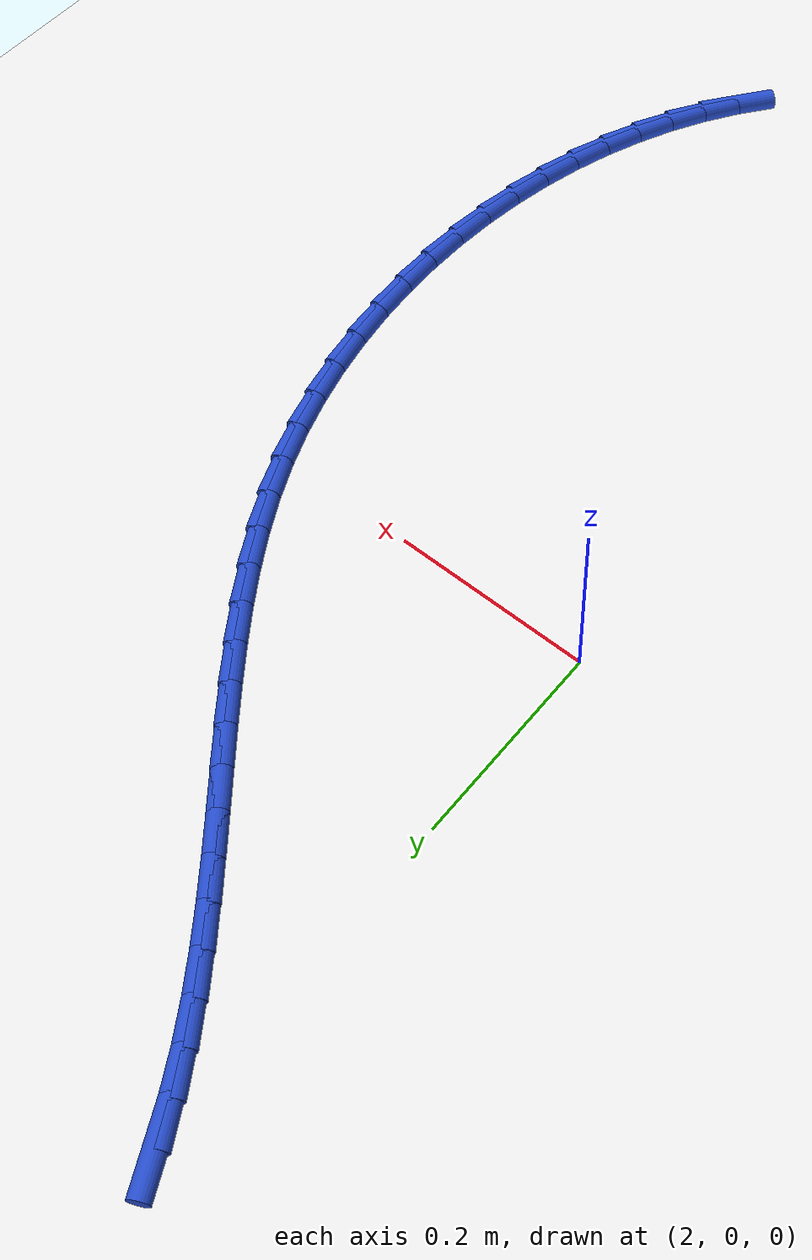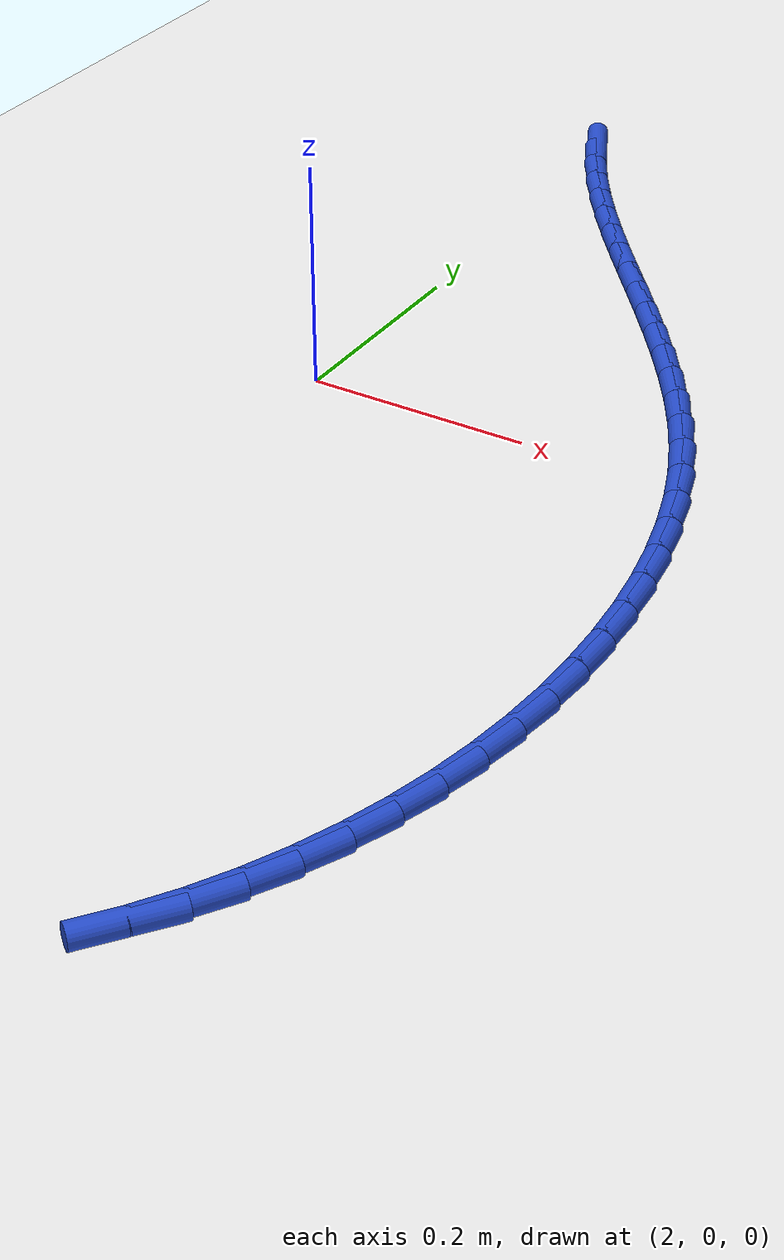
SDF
<sdf version="1.6">
 <world name="default">
  <model name="ground_plane">
   <static>1</static>
   <link name="link">
    <collision name="collision">
     <geometry><plane><normal>0 0 1</normal><size>100 100</size></plane></geometry>
     <surface><friction><ode><mu>100</mu><mu2>50</mu2></ode></friction></surface>
    </collision>
    <visual name="visual">
     <cast_shadows>0</cast_shadows>
     <geometry><plane><normal>0 0 1</normal><size>100 100</size></plane></geometry>
     <material>
      <script><uri>file://media/materials/scripts/gazebo.material</uri><name>Gazebo/WhiteGlow</name></script>
     </material>
    </visual>
   </link>
  </model>
  <model name="line">
   <link name="link_82">
    <pose>1.9943358474853345 0.5230932176683418 0.01 0 1.57 -1.1051795002723537</pose>
    <collision name="collision">
     <geometry><cylinder><radius>0.01</radius><length>0.08</length></cylinder></geometry>
    </collision>
    <visual name="visual">
     <material>
      <script><name>Gazebo/Blue</name><uri>file://media/materials/scripts/gazebo.material</uri></script>
     </material>
     <geometry><cylinder><radius>0.01</radius><length>0.08</length></cylinder></geometry>
    </visual>
   </link>
   <link name="link_83">
    <pose>2.011148510317701 0.48963278176033315 0.01 0 1.57 -1.0487421136812345</pose>
    <collision name="collision">
     <geometry><cylinder><radius>0.01</radius><length>0.08</length></cylinder></geometry>
    </collision>
    <visual name="visual">
     <material>
      <script><name>Gazebo/Blue</name><uri>file://media/materials/scripts/gazebo.material</uri></script>
     </material>
     <geometry><cylinder><radius>0.01</radius><length>0.08</length></cylinder></geometry>
    </visual>
   </link>
   <link name="link_84">
    <pose>2.0299163910560027 0.4570095949847887 0.01 0 1.57 -1.0013109159219804</pose>
    <collision name="collision">
     <geometry><cylinder><radius>0.01</radius><length>0.08</length></cylinder></geometry>
    </collision>
    <visual name="visual">
     <material>
      <script><name>Gazebo/Blue</name><uri>file://media/materials/scripts/gazebo.material</uri></script>
     </material>
     <geometry><cylinder><radius>0.01</radius><length>0.08</length></cylinder></geometry>
    </visual>
   </link>
   <link name="link_85">
    <pose>2.05035767439179 0.42508220161654936 0.01 0 1.57 -0.9628195876552326</pose>
    <collision name="collision">
     <geometry><cylinder><radius>0.01</radius><length>0.08</length></cylinder></geometry>
    </collision>
    <visual name="visual">
     <material>
      <script><name>Gazebo/Blue</name><uri>file://media/materials/scripts/gazebo.material</uri></script>
     </material>
     <geometry><cylinder><radius>0.01</radius><length>0.08</length></cylinder></geometry>
    </visual>
   </link>
   <link name="link_86">
    <pose>2.0721905450166114 0.39370914593045736 0.01 0 1.57 -0.933056085915932</pose>
    <collision name="collision">
     <geometry><cylinder><radius>0.01</radius><length>0.08</length></cylinder></geometry>
    </collision>
    <visual name="visual">
     <material>
      <script><name>Gazebo/Blue</name><uri>file://media/materials/scripts/gazebo.material</uri></script>
     </material>
     <geometry><cylinder><radius>0.01</radius><length>0.08</length></cylinder></geometry>
    </visual>
   </link>
   <link name="link_87">
    <pose>2.095133187622016 0.3627489722013545 0.01 0 1.57 -0.9117546309803627</pose>
    <collision name="collision">
     <geometry><cylinder><radius>0.01</radius><length>0.08</length></cylinder></geometry>
    </collision>
    <visual name="visual">
     <material>
      <script><name>Gazebo/Blue</name><uri>file://media/materials/scripts/gazebo.material</uri></script>
     </material>
     <geometry><cylinder><radius>0.01</radius><length>0.08</length></cylinder></geometry>
    </visual>
   </link>
   <link name="link_88">
    <pose>2.1189037868995526 0.3320602247040827 0.01 0 1.57 -0.8986603636766799</pose>
    <collision name="collision">
     <geometry><cylinder><radius>0.01</radius><length>0.08</length></cylinder></geometry>
    </collision>
    <visual name="visual">
     <material>
      <script><name>Gazebo/Blue</name><uri>file://media/materials/scripts/gazebo.material</uri></script>
     </material>
     <geometry><cylinder><radius>0.01</radius><length>0.08</length></cylinder></geometry>
    </visual>
   </link>
   <link name="link_89">
    <pose>2.1432205275407705 0.30150144771348364 0.01 0 1.57 -0.8935699384710587</pose>
    <collision name="collision">
     <geometry><cylinder><radius>0.01</radius><length>0.08</length></cylinder></geometry>
    </collision>
    <visual name="visual">
     <material>
      <script><name>Gazebo/Blue</name><uri>file://media/materials/scripts/gazebo.material</uri></script>
     </material>
     <geometry><cylinder><radius>0.01</radius><length>0.08</length></cylinder></geometry>
    </visual>
   </link>
   <link name="link_90">
    <pose>2.1678015942372184 0.2709311855043993 0.01 0 1.57 -0.8963528606333158</pose>
    <collision name="collision">
     <geometry><cylinder><radius>0.01</radius><length>0.08</length></cylinder></geometry>
    </collision>
    <visual name="visual">
     <material>
      <script><name>Gazebo/Blue</name><uri>file://media/materials/scripts/gazebo.material</uri></script>
     </material>
     <geometry><cylinder><radius>0.01</radius><length>0.08</length></cylinder></geometry>
    </visual>
   </link>
   <link name="link_91">
    <pose>2.192365171680445 0.2402079823516714 0.01 0 1.57 -0.9069575439450758</pose>
    <collision name="collision">
     <geometry><cylinder><radius>0.01</radius><length>0.08</length></cylinder></geometry>
    </collision>
    <visual name="visual">
     <material>
      <script><name>Gazebo/Blue</name><uri>file://media/materials/scripts/gazebo.material</uri></script>
     </material>
     <geometry><cylinder><radius>0.01</radius><length>0.08</length></cylinder></geometry>
    </visual>
   </link>
   <link name="link_92">
    <pose>2.2166294445620003 0.20919038253014172 0.01 0 1.57 -0.9254042864959119</pose>
    <collision name="collision">
     <geometry><cylinder><radius>0.01</radius><length>0.08</length></cylinder></geometry>
    </collision>
    <visual name="visual">
     <material>
      <script><name>Gazebo/Blue</name><uri>file://media/materials/scripts/gazebo.material</uri></script>
     </material>
     <geometry><cylinder><radius>0.01</radius><length>0.08</length></cylinder></geometry>
    </visual>
   </link>
   <link name="link_93">
    <pose>2.240312597573433 0.17773693031465226 0.01 0 1.57 -0.951765453403509</pose>
    <collision name="collision">
     <geometry><cylinder><radius>0.01</radius><length>0.08</length></cylinder></geometry>
    </collision>
    <visual name="visual">
     <material>
      <script><name>Gazebo/Blue</name><uri>file://media/materials/scripts/gazebo.material</uri></script>
     </material>
     <geometry><cylinder><radius>0.01</radius><length>0.08</length></cylinder></geometry>
    </visual>
   </link>
   <link name="link_94">
    <pose>2.263132815406291 0.1457061699800447 0.01 0 1.57 -0.9861316202088248</pose>
    <collision name="collision">
     <geometry><cylinder><radius>0.01</radius><length>0.08</length></cylinder></geometry>
    </collision>
    <visual name="visual">
     <material>
      <script><name>Gazebo/Blue</name><uri>file://media/materials/scripts/gazebo.material</uri></script>
     </material>
     <geometry><cylinder><radius>0.01</radius><length>0.08</length></cylinder></geometry>
    </visual>
   </link>
   <link name="link_95">
    <pose>2.2848082827521248 0.11295664580116091 0.01 0 1.57 -1.028561772513869</pose>
    <collision name="collision">
     <geometry><cylinder><radius>0.01</radius><length>0.08</length></cylinder></geometry>
    </collision>
    <visual name="visual">
     <material>
      <script><name>Gazebo/Blue</name><uri>file://media/materials/scripts/gazebo.material</uri></script>
     </material>
     <geometry><cylinder><radius>0.01</radius><length>0.08</length></cylinder></geometry>
    </visual>
   </link>
   <link name="link_96">
    <pose>2.305057184302482 0.0793469020528431 0.01 0 1.57 -1.0790165866087338</pose>
    <collision name="collision">
     <geometry><cylinder><radius>0.01</radius><length>0.08</length></cylinder></geometry>
    </collision>
    <visual name="visual">
     <material>
      <script><name>Gazebo/Blue</name><uri>file://media/materials/scripts/gazebo.material</uri></script>
     </material>
     <geometry><cylinder><radius>0.01</radius><length>0.08</length></cylinder></geometry>
    </visual>
   </link>
   <link name="link_97">
    <pose>2.323597704748913 0.04473548300993231 0.01 0 1.57 -1.1372741793964716</pose>
    <collision name="collision">
     <geometry><cylinder><radius>0.01</radius><length>0.08</length></cylinder></geometry>
    </collision>
    <visual name="visual">
     <material>
      <script><name>Gazebo/Blue</name><uri>file://media/materials/scripts/gazebo.material</uri></script>
     </material>
     <geometry><cylinder><radius>0.01</radius><length>0.08</length></cylinder></geometry>
    </visual>
   </link>
   <link name="link_98">
    <pose>2.3401481150341024 0.00898103221051988 0.01 0 1.57 -1.2006159199132533</pose>
    <collision name="collision">
     <geometry><cylinder><radius>0.01</radius><length>0.08</length></cylinder></geometry>
    </collision>
    <visual name="visual">
     <material>
      <script><name>Gazebo/Blue</name><uri>file://media/materials/scripts/gazebo.material</uri></script>
     </material>
     <geometry><cylinder><radius>0.01</radius><length>0.08</length></cylinder></geometry>
    </visual>
   </link>
   <link name="link_99">
    <pose>2.3544924381424783 -0.02798213521008349 0.01 0 1.57 -1.2626096243788922</pose>
    <collision name="collision">
     <geometry><cylinder><radius>0.01</radius><length>0.08</length></cylinder></geometry>
    </collision>
    <visual name="visual">
     <material>
      <script><name>Gazebo/Blue</name><uri>file://media/materials/scripts/gazebo.material</uri></script>
     </material>
     <geometry><cylinder><radius>0.01</radius><length>0.08</length></cylinder></geometry>
    </visual>
   </link>
   <link name="link_100">
    <pose>2.3665975778369295 -0.06600923338074259 0.01 0 1.57 -1.3225086221876894</pose>
    <collision name="collision">
     <geometry><cylinder><radius>0.01</radius><length>0.08</length></cylinder></geometry>
    </collision>
    <visual name="visual">
     <material>
      <script><name>Gazebo/Blue</name><uri>file://media/materials/scripts/gazebo.material</uri></script>
     </material>
     <geometry><cylinder><radius>0.01</radius><length>0.08</length></cylinder></geometry>
    </visual>
   </link>
   <link name="link_101">
    <pose>2.376461979206757 -0.10491917668228676 0.01 0 1.57 -1.3806991476614783</pose>
    <collision name="collision">
     <geometry><cylinder><radius>0.01</radius><length>0.08</length></cylinder></geometry>
    </collision>
    <visual name="visual">
     <material>
      <script><name>Gazebo/Blue</name><uri>file://media/materials/scripts/gazebo.material</uri></script>
     </material>
     <geometry><cylinder><radius>0.01</radius><length>0.08</length></cylinder></geometry>
    </visual>
   </link>
   <link name="link_102">
    <pose>2.3840840873412628 -0.14453087949554566 0.01 0 1.57 -1.4375770644569303</pose>
    <collision name="collision">
     <geometry><cylinder><radius>0.01</radius><length>0.08</length></cylinder></geometry>
    </collision>
    <visual name="visual">
     <material>
      <script><name>Gazebo/Blue</name><uri>file://media/materials/scripts/gazebo.material</uri></script>
     </material>
     <geometry><cylinder><radius>0.01</radius><length>0.08</length></cylinder></geometry>
    </visual>
   </link>
   <link name="link_103">
    <pose>2.389462347329747 -0.18466325620134866 0.01 0 1.57 -1.4935423075288305</pose>
    <collision name="collision">
     <geometry><cylinder><radius>0.01</radius><length>0.08</length></cylinder></geometry>
    </collision>
    <visual name="visual">
     <material>
      <script><name>Gazebo/Blue</name><uri>file://media/materials/scripts/gazebo.material</uri></script>
     </material>
     <geometry><cylinder><radius>0.01</radius><length>0.08</length></cylinder></geometry>
    </visual>
   </link>
   <link name="link_104">
    <pose>2.3925952042615117 -0.2251352211805251 0.01 0 1.57 -1.5489959718220294</pose>
    <collision name="collision">
     <geometry><cylinder><radius>0.01</radius><length>0.08</length></cylinder></geometry>
    </collision>
    <visual name="visual">
     <material>
      <script><name>Gazebo/Blue</name><uri>file://media/materials/scripts/gazebo.material</uri></script>
     </material>
     <geometry><cylinder><radius>0.01</radius><length>0.08</length></cylinder></geometry>
    </visual>
   </link>
   <link name="link_105">
    <pose>2.393481103225858 -0.2657656888139047 0.01 0 1.57 1.5372535098868723</pose>
    <collision name="collision">
     <geometry><cylinder><radius>0.01</radius><length>0.08</length></cylinder></geometry>
    </collision>
    <visual name="visual">
     <material>
      <script><name>Gazebo/Blue</name><uri>file://media/materials/scripts/gazebo.material</uri></script>
     </material>
     <geometry><cylinder><radius>0.01</radius><length>0.08</length></cylinder></geometry>
    </visual>
   </link>
   <link name="link_106">
    <pose>2.392118489312088 -0.30637357348231675 0.01 0 1.57 1.48161998703136</pose>
    <collision name="collision">
     <geometry><cylinder><radius>0.01</radius><length>0.08</length></cylinder></geometry>
    </collision>
    <visual name="visual">
     <material>
      <script><name>Gazebo/Blue</name><uri>file://media/materials/scripts/gazebo.material</uri></script>
     </material>
     <geometry><cylinder><radius>0.01</radius><length>0.08</length></cylinder></geometry>
    </visual>
   </link>
   <link name="link_107">
    <pose>2.3885058076095005 -0.3467777895665908 0.01 0 1.57 1.4252955570340446</pose>
    <collision name="collision">
     <geometry><cylinder><radius>0.01</radius><length>0.08</length></cylinder></geometry>
    </collision>
    <visual name="visual">
     <material>
      <script><name>Gazebo/Blue</name><uri>file://media/materials/scripts/gazebo.material</uri></script>
     </material>
     <geometry><cylinder><radius>0.01</radius><length>0.08</length></cylinder></geometry>
    </visual>
   </link>
   <link name="link_108">
    <pose>2.382641503207399 -0.38679725144755606 0.01 0 1.57 1.3678805331559127</pose>
    <collision name="collision">
     <geometry><cylinder><radius>0.01</radius><length>0.08</length></cylinder></geometry>
    </collision>
    <visual name="visual">
     <material>
      <script><name>Gazebo/Blue</name><uri>file://media/materials/scripts/gazebo.material</uri></script>
     </material>
     <geometry><cylinder><radius>0.01</radius><length>0.08</length></cylinder></geometry>
    </visual>
   </link>
   <link name="link_109">
    <pose>2.374524021195083 -0.4262508735060424 0.01 0 1.57 1.308977982371202</pose>
    <collision name="collision">
     <geometry><cylinder><radius>0.01</radius><length>0.08</length></cylinder></geometry>
    </collision>
    <visual name="visual">
     <material>
      <script><name>Gazebo/Blue</name><uri>file://media/materials/scripts/gazebo.material</uri></script>
     </material>
     <geometry><cylinder><radius>0.01</radius><length>0.08</length></cylinder></geometry>
    </visual>
   </link>
   <link name="link_110">
    <pose>2.3641518066618565 -0.4649575701228792 0.01 0 1.57 1.2481977536058888</pose>
    <collision name="collision">
     <geometry><cylinder><radius>0.01</radius><length>0.08</length></cylinder></geometry>
    </collision>
    <visual name="visual">
     <material>
      <script><name>Gazebo/Blue</name><uri>file://media/materials/scripts/gazebo.material</uri></script>
     </material>
     <geometry><cylinder><radius>0.01</radius><length>0.08</length></cylinder></geometry>
    </visual>
   </link>
   <link name="link_111">
    <pose>2.351523304697018 -0.5027362556788957 0.01 0 1.57 1.1851635844039474</pose>
    <collision name="collision">
     <geometry><cylinder><radius>0.01</radius><length>0.08</length></cylinder></geometry>
    </collision>
    <visual name="visual">
     <material>
      <script><name>Gazebo/Blue</name><uri>file://media/materials/scripts/gazebo.material</uri></script>
     </material>
     <geometry><cylinder><radius>0.01</radius><length>0.08</length></cylinder></geometry>
    </visual>
   </link>
   <link name="link_112">
    <pose>2.336636960389869 -0.5394058445549212 0.01 0 1.57 1.119524275800409</pose>
    <collision name="collision">
     <geometry><cylinder><radius>0.01</radius><length>0.08</length></cylinder></geometry>
    </collision>
    <visual name="visual">
     <material>
      <script><name>Gazebo/Blue</name><uri>file://media/materials/scripts/gazebo.material</uri></script>
     </material>
     <geometry><cylinder><radius>0.01</radius><length>0.08</length></cylinder></geometry>
    </visual>
   </link>
   <link name="link_113">
    <pose>2.3194912188297114 -0.5747852511317857 0.01 0 1.57 1.050969855536599</pose>
    <collision name="collision">
     <geometry><cylinder><radius>0.01</radius><length>0.08</length></cylinder></geometry>
    </collision>
    <visual name="visual">
     <material>
      <script><name>Gazebo/Blue</name><uri>file://media/materials/scripts/gazebo.material</uri></script>
     </material>
     <geometry><cylinder><radius>0.01</radius><length>0.08</length></cylinder></geometry>
    </visual>
   </link>
   <link name="link_114">
    <pose>2.3000845251058477 -0.6086933897903184 0.01 0 1.57 0.9792545975153891</pose>
    <collision name="collision">
     <geometry><cylinder><radius>0.01</radius><length>0.08</length></cylinder></geometry>
    </collision>
    <visual name="visual">
     <material>
      <script><name>Gazebo/Blue</name><uri>file://media/materials/scripts/gazebo.material</uri></script>
     </material>
     <geometry><cylinder><radius>0.01</radius><length>0.08</length></cylinder></geometry>
    </visual>
   </link>
   <link name="link_115">
    <pose>2.278415357945981 -0.6409492134645471 0.01 0 1.57 0.9058354590658837</pose>
    <collision name="collision">
     <geometry><cylinder><radius>0.01</radius><length>0.08</length></cylinder></geometry>
    </collision>
    <visual name="visual">
     <material>
      <script><name>Gazebo/Blue</name><uri>file://media/materials/scripts/gazebo.material</uri></script>
     </material>
     <geometry><cylinder><radius>0.01</radius><length>0.08</length></cylinder></geometry>
    </visual>
   </link>
  </model>
 </world>
</sdf>
